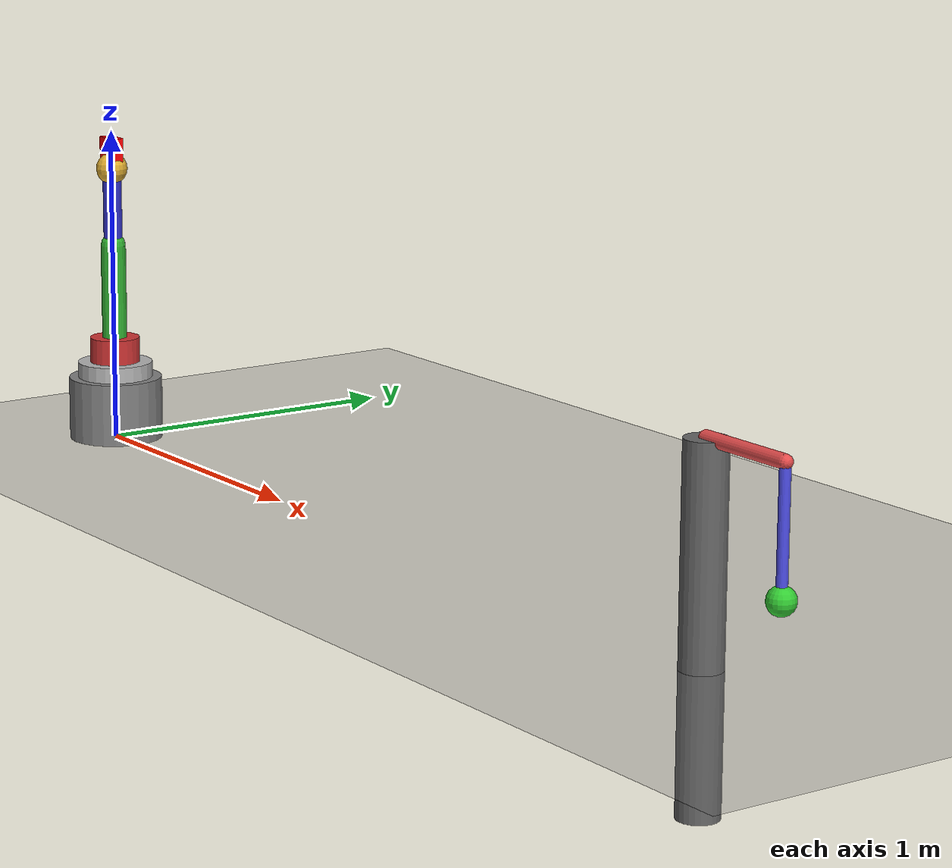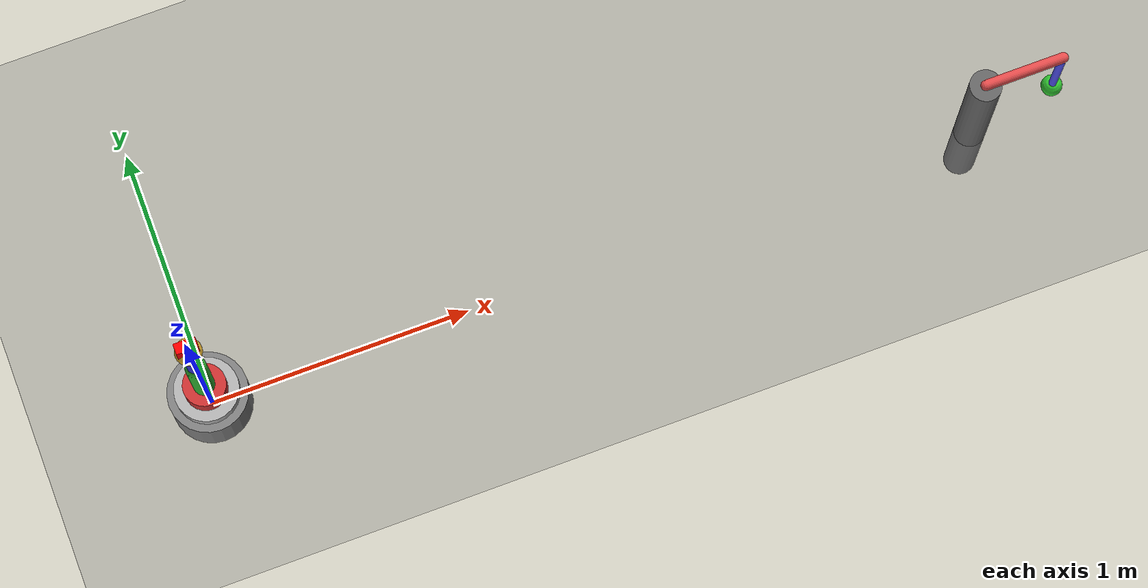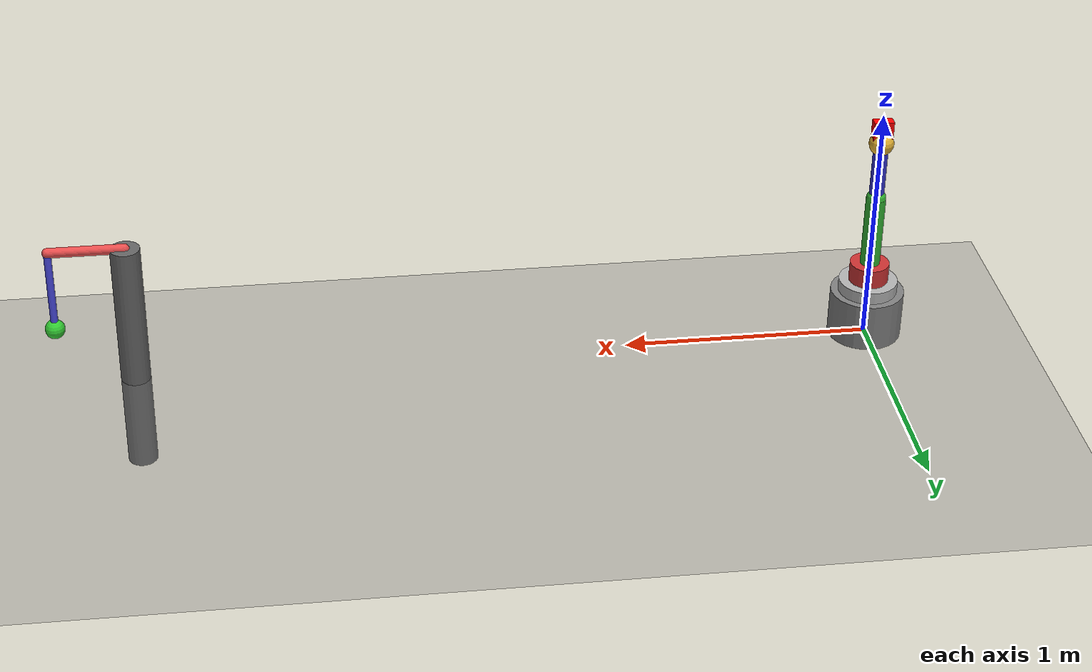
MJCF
<!-- 多关节级联: 构建简单的3轴机械臂 -->
<mujoco model="robot_arm">
    <compiler angle="radian" autolimits="true"/>
    <option timestep="0.002" gravity="0 0 -9.81"/>

    <visual>
        <global realtime="1"/>
        <quality shadowsize="1024"/>
        <headlight diffuse="1 1 1" specular="0.5 0.5 0.5" active="1"/>
    </visual>

    <asset>
        <texture name="grid" type="2d" builtin="checker" width="512" height="512"
                 rgb1=".15 .15 .15" rgb2=".7 .7 .7"/>
        <material name="grid" texture="grid"/>
    </asset>

    <worldbody>
        <geom name="floor" type="plane" size="20 20 .01" material="grid" condim="3"/>

        <!--
        3轴机械臂:
        - 底座(balance_arm)绕Z轴旋转 (hinge, axis=0 0 1)
        - 大臂(arm1)绕Y轴俯仰 (hinge, axis=0 1 0)
        - 小臂(arm2)绕Y轴俯仰 (hinge, axis=0 1 0)
        -->

        <!-- 底座 -->
        <body name="base" pos="0 0 0.1">
            <geom type="cylinder" size="0.15 0.1" rgba=".5 .5 .5 1"/>
            <site type="sphere" size="0.03" rgba="1 1 1 .5" pos="0 0 0.1"/>

            <!-- 旋转台 (绕Z轴) -->
            <body name="turntable" pos="0 0 0.1">
                <joint name="j1" type="hinge" axis="0 0 1"
                       range="-3.14 3.14" damping="0.05" frictionloss="0.02"/>
                <geom type="cylinder" size="0.12 0.05" rgba=".7 .7 .7 1"/>
                <geom type="cylinder" size="0.08 0.08" rgba=".8 .2 .2 1" pos="0 0 0.05"/>

                <!-- 大臂 (绕Y轴俯仰) -->
                <body name="upper_arm" pos="0 0 0.08">
                    <joint name="j2" type="hinge" axis="0 1 0"
                           range="-1.5 1.5" damping="0.03" stiffness="1"/>
                    <geom type="capsule" size="0.04" fromto="0 0 0  0 0 0.35"
                          rgba=".2 .7 .2 1"/>
                    <!-- 标记大臂末端 -->
                    <site type="sphere" size="0.03" rgba="1 1 1 .5" pos="0 0 0.35"/>

                    <!-- 小臂 (绕Y轴俯仰) -->
                    <body name="forearm" pos="0 0 0.35">
                        <joint name="j3" type="hinge" axis="0 1 0"
                               range="-2.0 2.0" damping="0.02" stiffness="0.5"/>
                        <geom type="capsule" size="0.03" fromto="0 0 0  0 0 0.25"
                              rgba=".2 .2 .8 1"/>
                        <!-- 末端执行器 -->
                        <body name="end_effector" pos="0 0 0.25">
                            <geom type="sphere" size="0.05" rgba=".9 .7 .2 1"/>
                            <site type="box" size="0.04 0.02 0.04" rgba="1 0 0 1" pos="0 0 0.06"/>
                        </body>
                    </body>
                </body>
            </body>
        </body>

        <!-- 对比: 双级摆（和scence.xml类似但更明显） -->
        <body name="pendulum_base" pos="3 0 0.1">
            <geom type="cylinder" size="0.06 0.5" rgba=".4 .4 .4 1"/>

            <body name="pendulum_arm" pos="0 0 0.5">
                <joint name="pj1" type="hinge" axis="0 0 1" damping="0.002" stiffness="0.3"/>
                <geom type="capsule" size="0.02" fromto="0 0 0  0.3 0 0" rgba=".9 .3 .3 1"/>

                <body name="pendulum_rod" pos="0.3 0 0">
                    <joint name="pj2" type="hinge" axis="1 0 0" damping="0.002"/>
                    <geom type="capsule" size="0.015" fromto="0 0 0  0 0 -0.35" rgba=".3 .3 .9 1"/>
                    <geom type="sphere" size="0.04" rgba=".2 .8 .2 1" pos="0 0 -0.35"/>
                </body>
            </body>
        </body>
    </worldbody>
</mujoco>
